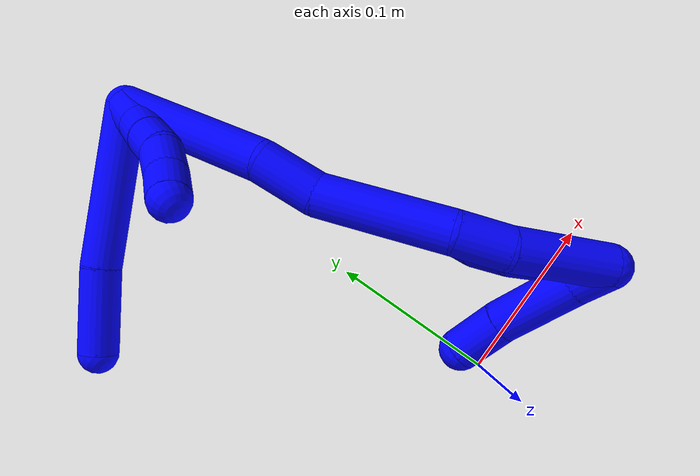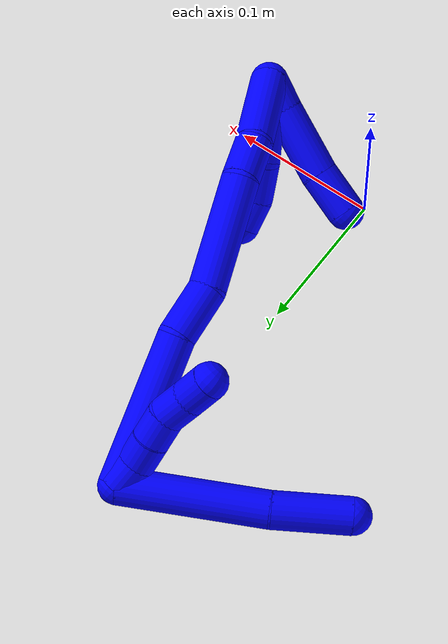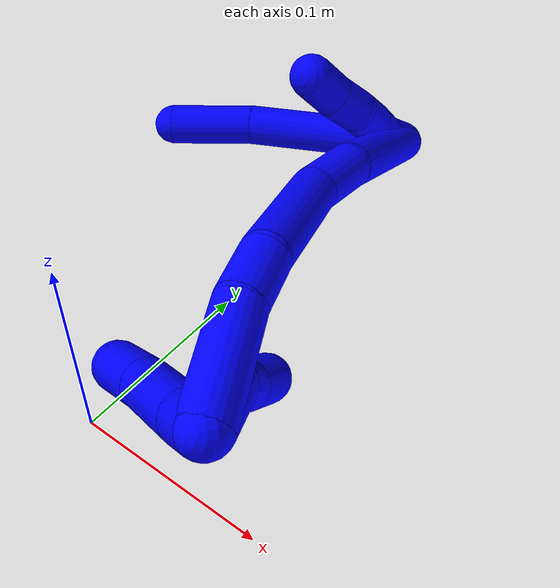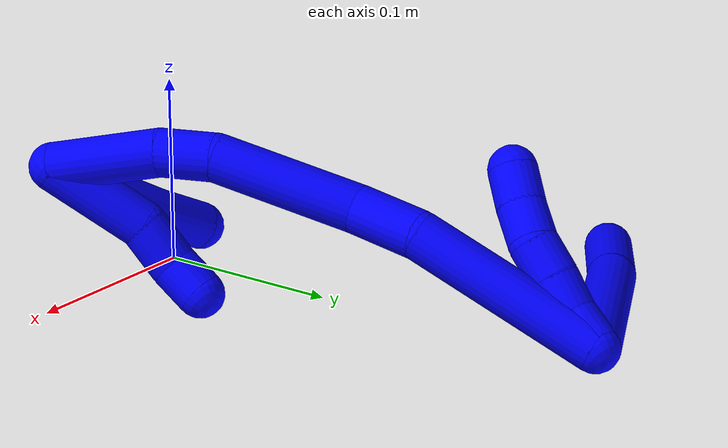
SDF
<sdf version="1.7">
 <world name="default">
  <model name="1">
   <static>0</static>
   <link name="1">
    <collision name="collision-cylinder-e_1_2_8">
     <pose>0.012439 0.0386 -0.027614 -2.19177 0.25633 -0.491173</pose>
     <geometry><cylinder><radius>0.0125</radius><length>0.098128</length></cylinder></geometry>
     <surface>
      <friction><ode><mu>1.16</mu><mu2>1.16</mu2><slip1>0</slip1><slip2>0</slip2></ode></friction>
      <contact><ode><kp>1e+06</kp><kd>1</kd><max_vel>0</max_vel><min_depth>0.001</min_depth></ode></contact>
     </surface>
    </collision>
    <visual name="visual-cylinder-e_1_2_8">
     <pose>0.012439 0.0386 -0.027614 -2.19177 0.25633 -0.491173</pose>
     <geometry><cylinder><radius>0.0125</radius><length>0.098128</length></cylinder></geometry>
     <material><ambient>0 0 1 1</ambient></material>
    </visual>
    <collision name="collision-cylinder-e_2_8_6">
     <pose>0.033835 0.095814 -0.070913 -2.27099 0.352582 -0.73162</pose>
     <geometry><cylinder><radius>0.0125</radius><length>0.051872</length></cylinder></geometry>
     <surface>
      <friction><ode><mu>1.16</mu><mu2>1.16</mu2><slip1>0</slip1><slip2>0</slip2></ode></friction>
      <contact><ode><kp>1e+06</kp><kd>1</kd><max_vel>0</max_vel><min_depth>0.001</min_depth></ode></contact>
     </surface>
    </collision>
    <visual name="visual-cylinder-e_2_8_6">
     <pose>0.033835 0.095814 -0.070913 -2.27099 0.352582 -0.73162</pose>
     <geometry><cylinder><radius>0.0125</radius><length>0.051872</length></cylinder></geometry>
     <material><ambient>0 0 1 1</ambient></material>
    </visual>
    <collision name="collision-cylinder-e_1_2_9">
     <pose>-0.000711 -0.000295 -0.00997 3.11203 -0.071195 -2.35459</pose>
     <geometry><cylinder><radius>0.0125</radius><length>0.02</length></cylinder></geometry>
     <surface>
      <friction><ode><mu>1.16</mu><mu2>1.16</mu2><slip1>0</slip1><slip2>0</slip2></ode></friction>
      <contact><ode><kp>1e+06</kp><kd>1</kd><max_vel>0</max_vel><min_depth>0.001</min_depth></ode></contact>
     </surface>
    </collision>
    <visual name="visual-cylinder-e_1_2_9">
     <pose>-0.000711 -0.000295 -0.00997 3.11203 -0.071195 -2.35459</pose>
     <geometry><cylinder><radius>0.0125</radius><length>0.02</length></cylinder></geometry>
     <material><ambient>0 0 1 1</ambient></material>
    </visual>
    <collision name="collision-cylinder-e_2_9_10">
     <pose>-0.004556 -0.001346 -0.029407 3.06184 -0.31871 -2.65494</pose>
     <geometry><cylinder><radius>0.0125</radius><length>0.02</length></cylinder></geometry>
     <surface>
      <friction><ode><mu>1.16</mu><mu2>1.16</mu2><slip1>0</slip1><slip2>0</slip2></ode></friction>
      <contact><ode><kp>1e+06</kp><kd>1</kd><max_vel>0</max_vel><min_depth>0.001</min_depth></ode></contact>
     </surface>
    </collision>
    <visual name="visual-cylinder-e_2_9_10">
     <pose>-0.004556 -0.001346 -0.029407 3.06184 -0.31871 -2.65494</pose>
     <geometry><cylinder><radius>0.0125</radius><length>0.02</length></cylinder></geometry>
     <material><ambient>0 0 1 1</ambient></material>
    </visual>
    <collision name="collision-cylinder-e_3_10_11">
     <pose>-0.010121 -0.00315 -0.048516 3.03339 -0.245626 -2.3147</pose>
     <geometry><cylinder><radius>0.0125</radius><length>0.02</length></cylinder></geometry>
     <surface>
      <friction><ode><mu>1.16</mu><mu2>1.16</mu2><slip1>0</slip1><slip2>0</slip2></ode></friction>
      <contact><ode><kp>1e+06</kp><kd>1</kd><max_vel>0</max_vel><min_depth>0.001</min_depth></ode></contact>
     </surface>
    </collision>
    <visual name="visual-cylinder-e_3_10_11">
     <pose>-0.010121 -0.00315 -0.048516 3.03339 -0.245626 -2.3147</pose>
     <geometry><cylinder><radius>0.0125</radius><length>0.02</length></cylinder></geometry>
     <material><ambient>0 0 1 1</ambient></material>
    </visual>
    <collision name="collision-cylinder-e_4_11_12">
     <pose>-0.014819 -0.002093 -0.067669 -2.92381 -0.22859 1.61962</pose>
     <geometry><cylinder><radius>0.0125</radius><length>0.02</length></cylinder></geometry>
     <surface>
      <friction><ode><mu>1.16</mu><mu2>1.16</mu2><slip1>0</slip1><slip2>0</slip2></ode></friction>
      <contact><ode><kp>1e+06</kp><kd>1</kd><max_vel>0</max_vel><min_depth>0.001</min_depth></ode></contact>
     </surface>
    </collision>
    <visual name="visual-cylinder-e_4_11_12">
     <pose>-0.014819 -0.002093 -0.067669 -2.92381 -0.22859 1.61962</pose>
     <geometry><cylinder><radius>0.0125</radius><length>0.02</length></cylinder></geometry>
     <material><ambient>0 0 1 1</ambient></material>
    </visual>
    <collision name="collision-cylinder-e_5_12_5">
     <pose>-0.020378 0.002133 -0.08638 -2.91495 -0.335564 1.95831</pose>
     <geometry><cylinder><radius>0.0125</radius><length>0.02</length></cylinder></geometry>
     <surface>
      <friction><ode><mu>1.16</mu><mu2>1.16</mu2><slip1>0</slip1><slip2>0</slip2></ode></friction>
      <contact><ode><kp>1e+06</kp><kd>1</kd><max_vel>0</max_vel><min_depth>0.001</min_depth></ode></contact>
     </surface>
    </collision>
    <visual name="visual-cylinder-e_5_12_5">
     <pose>-0.020378 0.002133 -0.08638 -2.91495 -0.335564 1.95831</pose>
     <geometry><cylinder><radius>0.0125</radius><length>0.02</length></cylinder></geometry>
     <material><ambient>0 0 1 1</ambient></material>
    </visual>
    <collision name="collision-cylinder-e_1_2_13">
     <pose>0.005664 -0.020322 -0.046081 2.72624 0.111985 0.519968</pose>
     <geometry><cylinder><radius>0.0125</radius><length>0.101361</length></cylinder></geometry>
     <surface>
      <friction><ode><mu>1.16</mu><mu2>1.16</mu2><slip1>0</slip1><slip2>0</slip2></ode></friction>
      <contact><ode><kp>1e+06</kp><kd>1</kd><max_vel>0</max_vel><min_depth>0.001</min_depth></ode></contact>
     </surface>
    </collision>
    <visual name="visual-cylinder-e_1_2_13">
     <pose>0.005664 -0.020322 -0.046081 2.72624 0.111985 0.519968</pose>
     <geometry><cylinder><radius>0.0125</radius><length>0.101361</length></cylinder></geometry>
     <material><ambient>0 0 1 1</ambient></material>
    </visual>
    <collision name="collision-cylinder-e_2_13_14">
     <pose>0.017963 -0.045576 -0.108173 2.84282 0.377139 1.806</pose>
     <geometry><cylinder><radius>0.0125</radius><length>0.036039</length></cylinder></geometry>
     <surface>
      <friction><ode><mu>1.16</mu><mu2>1.16</mu2><slip1>0</slip1><slip2>0</slip2></ode></friction>
      <contact><ode><kp>1e+06</kp><kd>1</kd><max_vel>0</max_vel><min_depth>0.001</min_depth></ode></contact>
     </surface>
    </collision>
    <visual name="visual-cylinder-e_2_13_14">
     <pose>0.017963 -0.045576 -0.108173 2.84282 0.377139 1.806</pose>
     <geometry><cylinder><radius>0.0125</radius><length>0.036039</length></cylinder></geometry>
     <material><ambient>0 0 1 1</ambient></material>
    </visual>
    <collision name="collision-cylinder-e_3_14_15">
     <pose>0.034724 -0.07014 -0.154916 2.57311 0.270821 0.872725</pose>
     <geometry><cylinder><radius>0.0125</radius><length>0.075694</length></cylinder></geometry>
     <surface>
      <friction><ode><mu>1.16</mu><mu2>1.16</mu2><slip1>0</slip1><slip2>0</slip2></ode></friction>
      <contact><ode><kp>1e+06</kp><kd>1</kd><max_vel>0</max_vel><min_depth>0.001</min_depth></ode></contact>
     </surface>
    </collision>
    <visual name="visual-cylinder-e_3_14_15">
     <pose>0.034724 -0.07014 -0.154916 2.57311 0.270821 0.872725</pose>
     <geometry><cylinder><radius>0.0125</radius><length>0.075694</length></cylinder></geometry>
     <material><ambient>0 0 1 1</ambient></material>
    </visual>
    <collision name="collision-cylinder-e_4_15_16">
     <pose>0.052449 -0.097173 -0.196078 2.5245 0.536188 1.42271</pose>
     <geometry><cylinder><radius>0.0125</radius><length>0.029754</length></cylinder></geometry>
     <surface>
      <friction><ode><mu>1.16</mu><mu2>1.16</mu2><slip1>0</slip1><slip2>0</slip2></ode></friction>
      <contact><ode><kp>1e+06</kp><kd>1</kd><max_vel>0</max_vel><min_depth>0.001</min_depth></ode></contact>
     </surface>
    </collision>
    <visual name="visual-cylinder-e_4_15_16">
     <pose>0.052449 -0.097173 -0.196078 2.5245 0.536188 1.42271</pose>
     <geometry><cylinder><radius>0.0125</radius><length>0.029754</length></cylinder></geometry>
     <material><ambient>0 0 1 1</ambient></material>
    </visual>
    <collision name="collision-cylinder-e_5_16_1">
     <pose>0.078103 -0.120719 -0.221672 2.32483 0.683879 1.37668</pose>
     <geometry><cylinder><radius>0.0125</radius><length>0.057151</length></cylinder></geometry>
     <surface>
      <friction><ode><mu>1.16</mu><mu2>1.16</mu2><slip1>0</slip1><slip2>0</slip2></ode></friction>
      <contact><ode><kp>1e+06</kp><kd>1</kd><max_vel>0</max_vel><min_depth>0.001</min_depth></ode></contact>
     </surface>
    </collision>
    <visual name="visual-cylinder-e_5_16_1">
     <pose>0.078103 -0.120719 -0.221672 2.32483 0.683879 1.37668</pose>
     <geometry><cylinder><radius>0.0125</radius><length>0.057151</length></cylinder></geometry>
     <material><ambient>0 0 1 1</ambient></material>
    </visual>
    <collision name="collision-cylinder-e_1_1_17">
     <pose>0.098093 -0.120582 -0.215387 -0.649346 0.071761 -0.024163</pose>
     <geometry><cylinder><radius>0.0125</radius><length>0.053996</length></cylinder></geometry>
     <surface>
      <friction><ode><mu>1.16</mu><mu2>1.16</mu2><slip1>0</slip1><slip2>0</slip2></ode></friction>
      <contact><ode><kp>1e+06</kp><kd>1</kd><max_vel>0</max_vel><min_depth>0.001</min_depth></ode></contact>
     </surface>
    </collision>
    <visual name="visual-cylinder-e_1_1_17">
     <pose>0.098093 -0.120582 -0.215387 -0.649346 0.071761 -0.024163</pose>
     <geometry><cylinder><radius>0.0125</radius><length>0.053996</length></cylinder></geometry>
     <material><ambient>0 0 1 1</ambient></material>
    </visual>
    <collision name="collision-cylinder-e_2_17_18">
     <pose>0.104501 -0.099105 -0.183127 -0.447874 0.35683 -0.082098</pose>
     <geometry><cylinder><radius>0.0125</radius><length>0.025603</length></cylinder></geometry>
     <surface>
      <friction><ode><mu>1.16</mu><mu2>1.16</mu2><slip1>0</slip1><slip2>0</slip2></ode></friction>
      <contact><ode><kp>1e+06</kp><kd>1</kd><max_vel>0</max_vel><min_depth>0.001</min_depth></ode></contact>
     </surface>
    </collision>
    <visual name="visual-cylinder-e_2_17_18">
     <pose>0.104501 -0.099105 -0.183127 -0.447874 0.35683 -0.082098</pose>
     <geometry><cylinder><radius>0.0125</radius><length>0.025603</length></cylinder></geometry>
     <material><ambient>0 0 1 1</ambient></material>
    </visual>
    <collision name="collision-cylinder-e_3_18_4">
     <pose>0.109619 -0.091149 -0.162517 -0.274705 0.063439 -0.008772</pose>
     <geometry><cylinder><radius>0.0125</radius><length>0.020401</length></cylinder></geometry>
     <surface>
      <friction><ode><mu>1.16</mu><mu2>1.16</mu2><slip1>0</slip1><slip2>0</slip2></ode></friction>
      <contact><ode><kp>1e+06</kp><kd>1</kd><max_vel>0</max_vel><min_depth>0.001</min_depth></ode></contact>
     </surface>
    </collision>
    <visual name="visual-cylinder-e_3_18_4">
     <pose>0.109619 -0.091149 -0.162517 -0.274705 0.063439 -0.008772</pose>
     <geometry><cylinder><radius>0.0125</radius><length>0.020401</length></cylinder></geometry>
     <material><ambient>0 0 1 1</ambient></material>
    </visual>
    <collision name="collision-cylinder-e_1_1_19">
     <pose>0.09989 -0.127739 -0.232849 -1.15898 0.358566 -0.236104</pose>
     <geometry><cylinder><radius>0.0125</radius><length>0.02127</length></cylinder></geometry>
     <surface>
      <friction><ode><mu>1.16</mu><mu2>1.16</mu2><slip1>0</slip1><slip2>0</slip2></ode></friction>
      <contact><ode><kp>1e+06</kp><kd>1</kd><max_vel>0</max_vel><min_depth>0.001</min_depth></ode></contact>
     </surface>
    </collision>
    <visual name="visual-cylinder-e_1_1_19">
     <pose>0.09989 -0.127739 -0.232849 -1.15898 0.358566 -0.236104</pose>
     <geometry><cylinder><radius>0.0125</radius><length>0.02127</length></cylinder></geometry>
     <material><ambient>0 0 1 1</ambient></material>
    </visual>
    <collision name="collision-cylinder-e_2_19_20">
     <pose>0.110003 -0.096627 -0.221203 -1.23555 0.267518 -0.190648</pose>
     <geometry><cylinder><radius>0.0125</radius><length>0.04828</length></cylinder></geometry>
     <surface>
      <friction><ode><mu>1.16</mu><mu2>1.16</mu2><slip1>0</slip1><slip2>0</slip2></ode></friction>
      <contact><ode><kp>1e+06</kp><kd>1</kd><max_vel>0</max_vel><min_depth>0.001</min_depth></ode></contact>
     </surface>
    </collision>
    <visual name="visual-cylinder-e_2_19_20">
     <pose>0.110003 -0.096627 -0.221203 -1.23555 0.267518 -0.190648</pose>
     <geometry><cylinder><radius>0.0125</radius><length>0.04828</length></cylinder></geometry>
     <material><ambient>0 0 1 1</ambient></material>
    </visual>
    <collision name="collision-cylinder-e_3_20_3">
     <pose>0.12053 -0.060346 -0.210345 -1.35066 0.275801 -0.221408</pose>
     <geometry><cylinder><radius>0.0125</radius><length>0.03045</length></cylinder></geometry>
     <surface>
      <friction><ode><mu>1.16</mu><mu2>1.16</mu2><slip1>0</slip1><slip2>0</slip2></ode></friction>
      <contact><ode><kp>1e+06</kp><kd>1</kd><max_vel>0</max_vel><min_depth>0.001</min_depth></ode></contact>
     </surface>
    </collision>
    <visual name="visual-cylinder-e_3_20_3">
     <pose>0.12053 -0.060346 -0.210345 -1.35066 0.275801 -0.221408</pose>
     <geometry><cylinder><radius>0.0125</radius><length>0.03045</length></cylinder></geometry>
     <material><ambient>0 0 1 1</ambient></material>
    </visual>
    <collision name="collision-sphere-3">
     <pose>0.124676 -0.04605 -0.207146 0 -0 0</pose>
     <geometry><sphere><radius>0.0125</radius></sphere></geometry>
     <surface>
      <friction><ode><mu>1.16</mu><mu2>1.16</mu2><slip1>0</slip1><slip2>0</slip2></ode></friction>
      <contact><ode><kp>1e+06</kp><kd>1</kd><max_vel>0</max_vel><min_depth>0.001</min_depth></ode></contact>
     </surface>
    </collision>
    <visual name="visual-sphere-3">
     <pose>0.124676 -0.04605 -0.207146 0 -0 0</pose>
     <geometry><sphere><radius>0.0125</radius></sphere></geometry>
     <material><ambient>0 0 1 1</ambient></material>
    </visual>
    <collision name="collision-sphere-20">
     <pose>0.116384 -0.074642 -0.213544 0 -0 0</pose>
     <geometry><sphere><radius>0.0125</radius></sphere></geometry>
     <surface>
      <friction><ode><mu>1.16</mu><mu2>1.16</mu2><slip1>0</slip1><slip2>0</slip2></ode></friction>
      <contact><ode><kp>1e+06</kp><kd>1</kd><max_vel>0</max_vel><min_depth>0.001</min_depth></ode></contact>
     </surface>
    </collision>
    <visual name="visual-sphere-20">
     <pose>0.116384 -0.074642 -0.213544 0 -0 0</pose>
     <geometry><sphere><radius>0.0125</radius></sphere></geometry>
     <material><ambient>0 0 1 1</ambient></material>
    </visual>
    <collision name="collision-sphere-19">
     <pose>0.103622 -0.118613 -0.228863 0 -0 0</pose>
     <geometry><sphere><radius>0.0125</radius></sphere></geometry>
     <surface>
      <friction><ode><mu>1.16</mu><mu2>1.16</mu2><slip1>0</slip1><slip2>0</slip2></ode></friction>
      <contact><ode><kp>1e+06</kp><kd>1</kd><max_vel>0</max_vel><min_depth>0.001</min_depth></ode></contact>
     </surface>
    </collision>
    <visual name="visual-sphere-19">
     <pose>0.103622 -0.118613 -0.228863 0 -0 0</pose>
     <geometry><sphere><radius>0.0125</radius></sphere></geometry>
     <material><ambient>0 0 1 1</ambient></material>
    </visual>
    <collision name="collision-sphere-11">
     <pose>-0.012553 -0.004198 -0.058159 0 -0 0</pose>
     <geometry><sphere><radius>0.0125</radius></sphere></geometry>
     <surface>
      <friction><ode><mu>1.16</mu><mu2>1.16</mu2><slip1>0</slip1><slip2>0</slip2></ode></friction>
      <contact><ode><kp>1e+06</kp><kd>1</kd><max_vel>0</max_vel><min_depth>0.001</min_depth></ode></contact>
     </surface>
    </collision>
    <visual name="visual-sphere-11">
     <pose>-0.012553 -0.004198 -0.058159 0 -0 0</pose>
     <geometry><sphere><radius>0.0125</radius></sphere></geometry>
     <material><ambient>0 0 1 1</ambient></material>
    </visual>
    <collision name="collision-sphere-10">
     <pose>-0.00769 -0.002103 -0.038873 0 -0 0</pose>
     <geometry><sphere><radius>0.0125</radius></sphere></geometry>
     <surface>
      <friction><ode><mu>1.16</mu><mu2>1.16</mu2><slip1>0</slip1><slip2>0</slip2></ode></friction>
      <contact><ode><kp>1e+06</kp><kd>1</kd><max_vel>0</max_vel><min_depth>0.001</min_depth></ode></contact>
     </surface>
    </collision>
    <visual name="visual-sphere-10">
     <pose>-0.00769 -0.002103 -0.038873 0 -0 0</pose>
     <geometry><sphere><radius>0.0125</radius></sphere></geometry>
     <material><ambient>0 0 1 1</ambient></material>
    </visual>
    <collision name="collision-sphere-6">
     <pose>0.042791 0.114428 -0.086597 0 -0 0</pose>
     <geometry><sphere><radius>0.0125</radius></sphere></geometry>
     <surface>
      <friction><ode><mu>1.16</mu><mu2>1.16</mu2><slip1>0</slip1><slip2>0</slip2></ode></friction>
      <contact><ode><kp>1e+06</kp><kd>1</kd><max_vel>0</max_vel><min_depth>0.001</min_depth></ode></contact>
     </surface>
    </collision>
    <visual name="visual-sphere-6">
     <pose>0.042791 0.114428 -0.086597 0 -0 0</pose>
     <geometry><sphere><radius>0.0125</radius></sphere></geometry>
     <material><ambient>0 0 1 1</ambient></material>
    </visual>
    <collision name="collision-sphere-9">
     <pose>-0.001423 -0.00059 -0.019941 0 -0 0</pose>
     <geometry><sphere><radius>0.0125</radius></sphere></geometry>
     <surface>
      <friction><ode><mu>1.16</mu><mu2>1.16</mu2><slip1>0</slip1><slip2>0</slip2></ode></friction>
      <contact><ode><kp>1e+06</kp><kd>1</kd><max_vel>0</max_vel><min_depth>0.001</min_depth></ode></contact>
     </surface>
    </collision>
    <visual name="visual-sphere-9">
     <pose>-0.001423 -0.00059 -0.019941 0 -0 0</pose>
     <geometry><sphere><radius>0.0125</radius></sphere></geometry>
     <material><ambient>0 0 1 1</ambient></material>
    </visual>
    <collision name="collision-sphere-2">
     <geometry><sphere><radius>0.0125</radius></sphere></geometry>
     <surface>
      <friction><ode><mu>1.16</mu><mu2>1.16</mu2><slip1>0</slip1><slip2>0</slip2></ode></friction>
      <contact><ode><kp>1e+06</kp><kd>1</kd><max_vel>0</max_vel><min_depth>0.001</min_depth></ode></contact>
     </surface>
    </collision>
    <visual name="visual-sphere-2">
     <geometry><sphere><radius>0.0125</radius></sphere></geometry>
     <material><ambient>0 0 1 1</ambient></material>
    </visual>
    <collision name="collision-sphere-8">
     <pose>0.024878 0.077201 -0.055228 0 -0 0</pose>
     <geometry><sphere><radius>0.0125</radius></sphere></geometry>
     <surface>
      <friction><ode><mu>1.16</mu><mu2>1.16</mu2><slip1>0</slip1><slip2>0</slip2></ode></friction>
      <contact><ode><kp>1e+06</kp><kd>1</kd><max_vel>0</max_vel><min_depth>0.001</min_depth></ode></contact>
     </surface>
    </collision>
    <visual name="visual-sphere-8">
     <pose>0.024878 0.077201 -0.055228 0 -0 0</pose>
     <geometry><sphere><radius>0.0125</radius></sphere></geometry>
     <material><ambient>0 0 1 1</ambient></material>
    </visual>
    <collision name="collision-sphere-12">
     <pose>-0.017085 1.1e-05 -0.077179 0 -0 0</pose>
     <geometry><sphere><radius>0.0125</radius></sphere></geometry>
     <surface>
      <friction><ode><mu>1.16</mu><mu2>1.16</mu2><slip1>0</slip1><slip2>0</slip2></ode></friction>
      <contact><ode><kp>1e+06</kp><kd>1</kd><max_vel>0</max_vel><min_depth>0.001</min_depth></ode></contact>
     </surface>
    </collision>
    <visual name="visual-sphere-12">
     <pose>-0.017085 1.1e-05 -0.077179 0 -0 0</pose>
     <geometry><sphere><radius>0.0125</radius></sphere></geometry>
     <material><ambient>0 0 1 1</ambient></material>
    </visual>
    <collision name="collision-sphere-5">
     <pose>-0.023671 0.004254 -0.09558 0 -0 0</pose>
     <geometry><sphere><radius>0.0125</radius></sphere></geometry>
     <surface>
      <friction><ode><mu>1.16</mu><mu2>1.16</mu2><slip1>0</slip1><slip2>0</slip2></ode></friction>
      <contact><ode><kp>1e+06</kp><kd>1</kd><max_vel>0</max_vel><min_depth>0.001</min_depth></ode></contact>
     </surface>
    </collision>
    <visual name="visual-sphere-5">
     <pose>-0.023671 0.004254 -0.09558 0 -0 0</pose>
     <geometry><sphere><radius>0.0125</radius></sphere></geometry>
     <material><ambient>0 0 1 1</ambient></material>
    </visual>
    <collision name="collision-sphere-13">
     <pose>0.011327 -0.040645 -0.092162 0 -0 0</pose>
     <geometry><sphere><radius>0.0125</radius></sphere></geometry>
     <surface>
      <friction><ode><mu>1.16</mu><mu2>1.16</mu2><slip1>0</slip1><slip2>0</slip2></ode></friction>
      <contact><ode><kp>1e+06</kp><kd>1</kd><max_vel>0</max_vel><min_depth>0.001</min_depth></ode></contact>
     </surface>
    </collision>
    <visual name="visual-sphere-13">
     <pose>0.011327 -0.040645 -0.092162 0 -0 0</pose>
     <geometry><sphere><radius>0.0125</radius></sphere></geometry>
     <material><ambient>0 0 1 1</ambient></material>
    </visual>
    <collision name="collision-sphere-14">
     <pose>0.024599 -0.050507 -0.124184 0 -0 0</pose>
     <geometry><sphere><radius>0.0125</radius></sphere></geometry>
     <surface>
      <friction><ode><mu>1.16</mu><mu2>1.16</mu2><slip1>0</slip1><slip2>0</slip2></ode></friction>
      <contact><ode><kp>1e+06</kp><kd>1</kd><max_vel>0</max_vel><min_depth>0.001</min_depth></ode></contact>
     </surface>
    </collision>
    <visual name="visual-sphere-14">
     <pose>0.024599 -0.050507 -0.124184 0 -0 0</pose>
     <geometry><sphere><radius>0.0125</radius></sphere></geometry>
     <material><ambient>0 0 1 1</ambient></material>
    </visual>
    <collision name="collision-sphere-15">
     <pose>0.044849 -0.089772 -0.185648 0 -0 0</pose>
     <geometry><sphere><radius>0.0125</radius></sphere></geometry>
     <surface>
      <friction><ode><mu>1.16</mu><mu2>1.16</mu2><slip1>0</slip1><slip2>0</slip2></ode></friction>
      <contact><ode><kp>1e+06</kp><kd>1</kd><max_vel>0</max_vel><min_depth>0.001</min_depth></ode></contact>
     </surface>
    </collision>
    <visual name="visual-sphere-15">
     <pose>0.044849 -0.089772 -0.185648 0 -0 0</pose>
     <geometry><sphere><radius>0.0125</radius></sphere></geometry>
     <material><ambient>0 0 1 1</ambient></material>
    </visual>
    <collision name="collision-sphere-16">
     <pose>0.060049 -0.104574 -0.206509 0 -0 0</pose>
     <geometry><sphere><radius>0.0125</radius></sphere></geometry>
     <surface>
      <friction><ode><mu>1.16</mu><mu2>1.16</mu2><slip1>0</slip1><slip2>0</slip2></ode></friction>
      <contact><ode><kp>1e+06</kp><kd>1</kd><max_vel>0</max_vel><min_depth>0.001</min_depth></ode></contact>
     </surface>
    </collision>
    <visual name="visual-sphere-16">
     <pose>0.060049 -0.104574 -0.206509 0 -0 0</pose>
     <geometry><sphere><radius>0.0125</radius></sphere></geometry>
     <material><ambient>0 0 1 1</ambient></material>
    </visual>
    <collision name="collision-sphere-1">
     <pose>0.096158 -0.136865 -0.236836 0 -0 0</pose>
     <geometry><sphere><radius>0.0125</radius></sphere></geometry>
     <surface>
      <friction><ode><mu>1.16</mu><mu2>1.16</mu2><slip1>0</slip1><slip2>0</slip2></ode></friction>
      <contact><ode><kp>1e+06</kp><kd>1</kd><max_vel>0</max_vel><min_depth>0.001</min_depth></ode></contact>
     </surface>
    </collision>
    <visual name="visual-sphere-1">
     <pose>0.096158 -0.136865 -0.236836 0 -0 0</pose>
     <geometry><sphere><radius>0.0125</radius></sphere></geometry>
     <material><ambient>0 0 1 1</ambient></material>
    </visual>
    <collision name="collision-sphere-18">
     <pose>0.108972 -0.093911 -0.172316 0 -0 0</pose>
     <geometry><sphere><radius>0.0125</radius></sphere></geometry>
     <surface>
      <friction><ode><mu>1.16</mu><mu2>1.16</mu2><slip1>0</slip1><slip2>0</slip2></ode></friction>
      <contact><ode><kp>1e+06</kp><kd>1</kd><max_vel>0</max_vel><min_depth>0.001</min_depth></ode></contact>
     </surface>
    </collision>
    <visual name="visual-sphere-18">
     <pose>0.108972 -0.093911 -0.172316 0 -0 0</pose>
     <geometry><sphere><radius>0.0125</radius></sphere></geometry>
     <material><ambient>0 0 1 1</ambient></material>
    </visual>
    <collision name="collision-sphere-17">
     <pose>0.100029 -0.104299 -0.193939 0 -0 0</pose>
     <geometry><sphere><radius>0.0125</radius></sphere></geometry>
     <surface>
      <friction><ode><mu>1.16</mu><mu2>1.16</mu2><slip1>0</slip1><slip2>0</slip2></ode></friction>
      <contact><ode><kp>1e+06</kp><kd>1</kd><max_vel>0</max_vel><min_depth>0.001</min_depth></ode></contact>
     </surface>
    </collision>
    <visual name="visual-sphere-17">
     <pose>0.100029 -0.104299 -0.193939 0 -0 0</pose>
     <geometry><sphere><radius>0.0125</radius></sphere></geometry>
     <material><ambient>0 0 1 1</ambient></material>
    </visual>
    <collision name="collision-sphere-4">
     <pose>0.110266 -0.088388 -0.152719 0 -0 0</pose>
     <geometry><sphere><radius>0.0125</radius></sphere></geometry>
     <surface>
      <friction><ode><mu>1.16</mu><mu2>1.16</mu2><slip1>0</slip1><slip2>0</slip2></ode></friction>
      <contact><ode><kp>1e+06</kp><kd>1</kd><max_vel>0</max_vel><min_depth>0.001</min_depth></ode></contact>
     </surface>
    </collision>
    <visual name="visual-sphere-4">
     <pose>0.110266 -0.088388 -0.152719 0 -0 0</pose>
     <geometry><sphere><radius>0.0125</radius></sphere></geometry>
     <material><ambient>0 0 1 1</ambient></material>
    </visual>
    <inertial>
     <pose>0.044203 -0.040356 -0.122263 0 -0 0</pose>
     <mass>0.75</mass>
     <inertia>
      <ixx>0.000272</ixx>
      <ixy>0</ixy>
      <ixz>0</ixz>
      <iyy>-3.7e-05</iyy>
      <iyz>0</iyz>
      <izz>-0.000121</izz>
     </inertia>
    </inertial>
   </link>
   <pose>0.005461 0.26664 0.01413 -2.94049 1.00103 -1.60041</pose>
  </model>
 </world>
</sdf>
